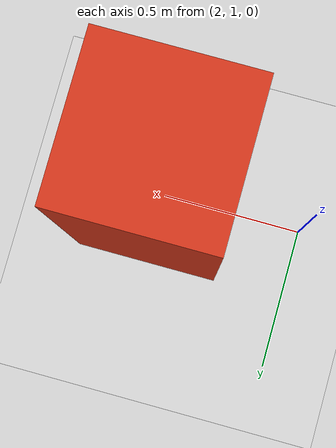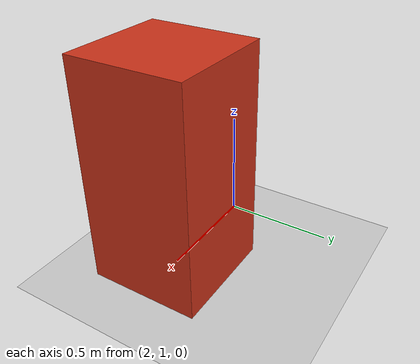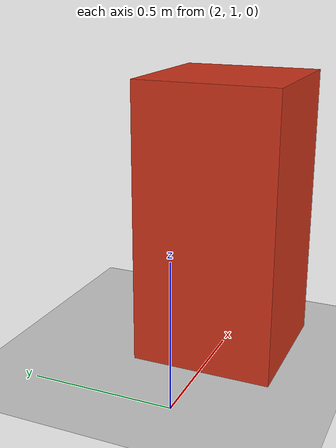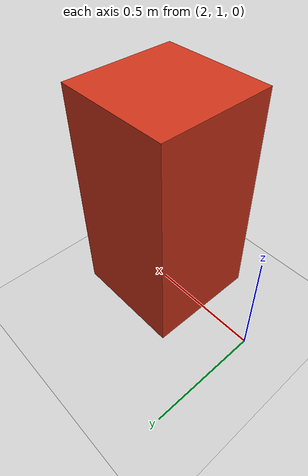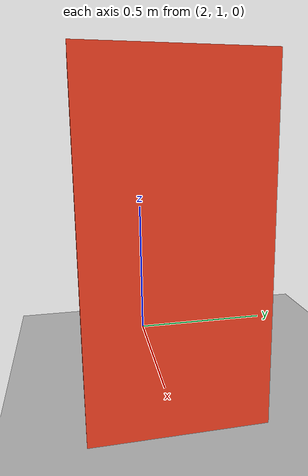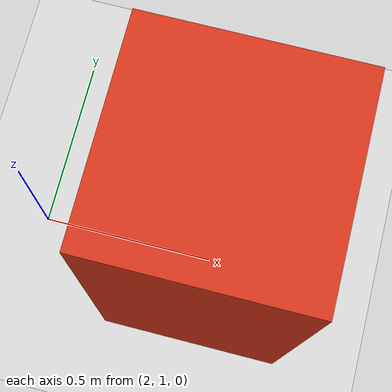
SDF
<?xml version="1.0" ?>
<sdf version="1.7">
  <world name="default">
    <physics name="1ms" type="ignored">
      <max_step_size>0.001</max_step_size>
      <real_time_factor>1.0</real_time_factor>
    </physics>

    <plugin
      filename="ignition-gazebo-physics-system"
      name="gz::sim::systems::Physics"/>
    <plugin
      filename="ignition-gazebo-user-commands-system"
      name="gz::sim::systems::UserCommands"/>
    <plugin
      filename="ignition-gazebo-scene-broadcaster-system"
      name="gz::sim::systems::SceneBroadcaster"/>
    <plugin
      filename="ignition-gazebo-sensors-system"
      name="gz::sim::systems::Sensors">
      <render_engine>ogre2</render_engine>
    </plugin>

    <scene>
      <ambient>0.4 0.4 0.4 1</ambient>
      <background>0.8 0.8 0.8 1</background>
      <shadows>true</shadows>
    </scene>

    <light name="sun" type="directional">
      <cast_shadows>true</cast_shadows>
      <pose>0 0 10 0 0 0</pose>
      <diffuse>0.8 0.8 0.8 1</diffuse>
      <specular>0.2 0.2 0.2 1</specular>
      <attenuation>
        <range>1000</range>
        <constant>0.9</constant>
        <linear>0.01</linear>
        <quadratic>0.001</quadratic>
      </attenuation>
      <direction>-0.5 0.1 -0.9</direction>
    </light>

    <model name="ground_plane">
      <static>true</static>
      <link name="link">
        <collision name="collision">
          <geometry>
            <plane>
              <normal>0 0 1</normal>
              <size>100 100</size>
            </plane>
          </geometry>
        </collision>
        <visual name="visual">
          <geometry>
            <plane>
              <normal>0 0 1</normal>
              <size>100 100</size>
            </plane>
          </geometry>
          <material>
            <ambient>0.8 0.8 0.8 1</ambient>
            <diffuse>0.8 0.8 0.8 1</diffuse>
            <specular>0.2 0.2 0.2 1</specular>
          </material>
        </visual>
      </link>
    </model>

    <!-- A simple target that makes the lidar output easy to verify. -->
    <model name="test_obstacle">
      <static>true</static>
      <pose>2.5 1.0 0.5 0 0 0</pose>
      <link name="link">
        <collision name="collision">
          <geometry>
            <box>
              <size>0.5 0.5 1.0</size>
            </box>
          </geometry>
        </collision>
        <visual name="visual">
          <geometry>
            <box>
              <size>0.5 0.5 1.0</size>
            </box>
          </geometry>
          <material>
            <ambient>0.8 0.2 0.1 1</ambient>
            <diffuse>0.8 0.2 0.1 1</diffuse>
          </material>
        </visual>
      </link>
    </model>
  </world>
</sdf>
